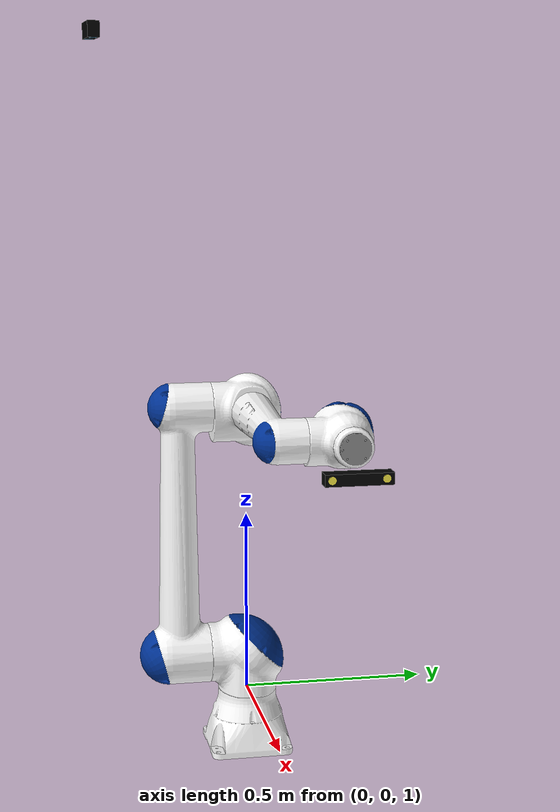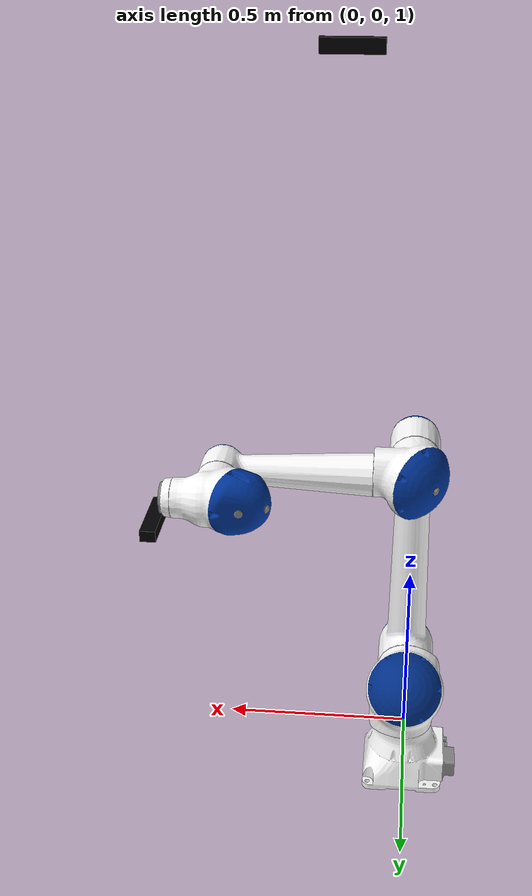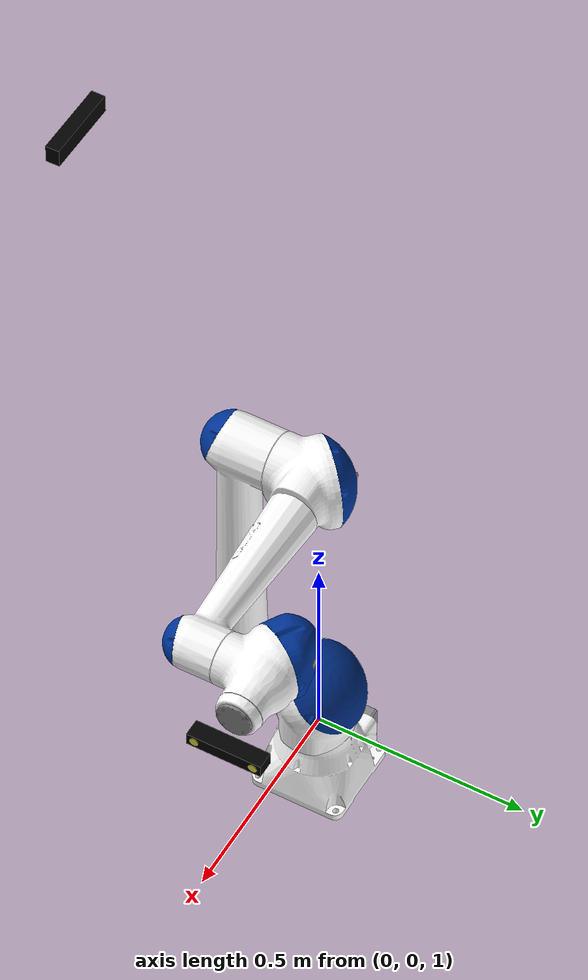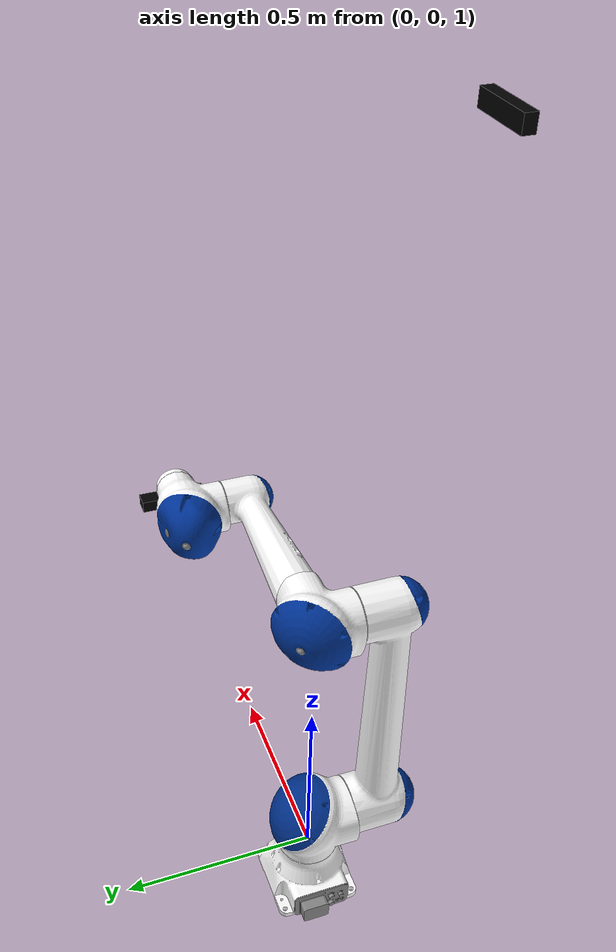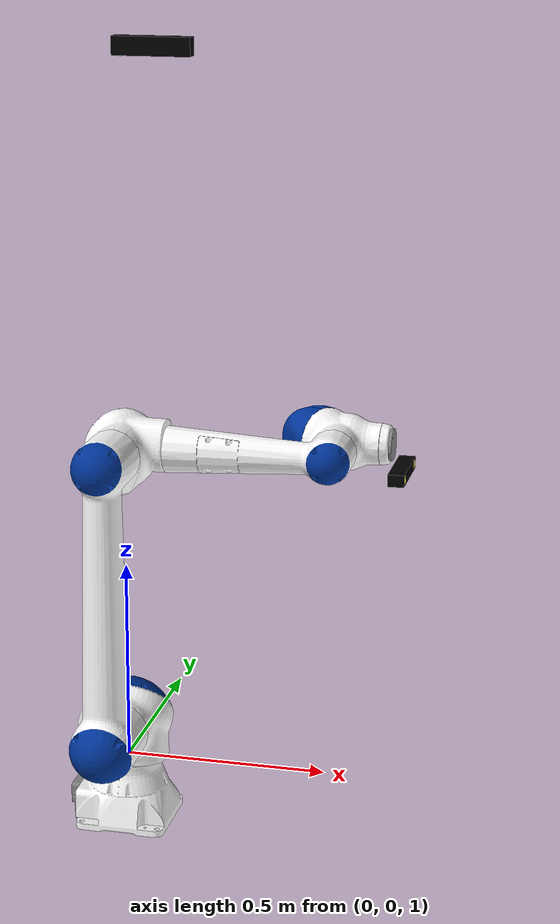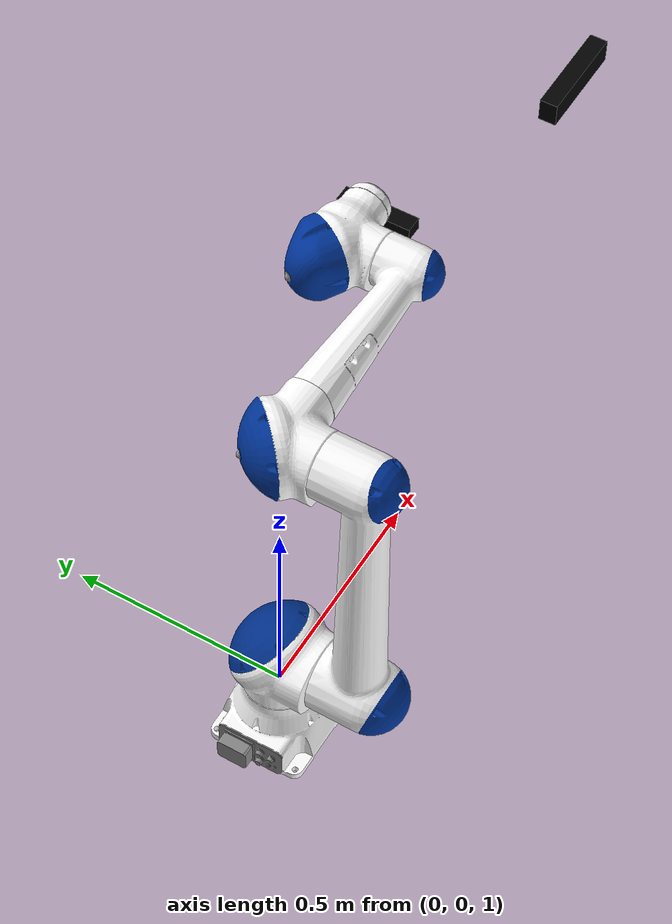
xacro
<?xml version="1.0" ?>
<robot name="depth_camera" xmlns:xacro="http://ros.org/wiki/xacro">

  <!-- Include -->
  <xacro:include filename="$(find yaskawa_hc10)/urdf/hc10_macro.xacro" />
  <xacro:include filename="$(find depth_camera)/urdf/depth_camera_macro.xacro" />

  <link name="world"/>

  <!-- Variables -->
  <xacro:depth_camera prefix="top_"/>
  <joint name="camera_fixed" type="fixed">
    <parent link="world"/>
    <child link="top_depth_camera_link"/>
    <origin xyz="0.2 -0.42 2.8 " rpy="3.1415 1.5707 1.5708" />
  </joint>

  <!-- Joint controller -->
  <gazebo>
		<plugin name="gazebo_ros_control" filename="libgazebo_ros_control.so"/>
  </gazebo>

  <!-- Used for fixing robot to Gazebo 'base_link' -->
  <xacro:motoman_hc10 prefix=""/>

  <joint name="fixed" type="fixed">
    <parent link="world"/>
    <child link="base_link"/>
    <origin xyz="0 0 0.83 " rpy="0 0 0" />
  </joint>

  <xacro:depth_camera prefix="robot_"/>
  <joint name="robot_camera_fixed" type="fixed">
    <parent link="link_6_t"/>
    <child link="robot_depth_camera_link"/>
    <origin xyz="-0.065 0 -0.15" rpy="0 1.5708 0" />
  </joint>

</robot>

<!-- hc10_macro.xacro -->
<robot xmlns:xacro="http://ros.org/wiki/xacro">
  <xacro:macro name="motoman_hc10" params="prefix">
    <xacro:include filename="$(find yaskawa_hc10)/urdf/common_materials.xacro"/>
    <xacro:include filename="$(find yaskawa_hc10)/urdf/hc10.gazebo" />

    <!-- link list -->
    <link name="${prefix}base_link">
      <visual>
        <geometry>
          <mesh filename="package://motoman_hc10_support/meshes/hc10/visual/base_link.dae"/>
        </geometry>
        <xacro:material_yaskawa_blue/>
      </visual>
      <collision>
        <geometry>
          <mesh filename="package://motoman_hc10_support/meshes/hc10/collision/base_link.stl"/>
        </geometry>
      </collision>
      <inertial>
        <mass value="8" />
        <origin xyz="0 0 0" rpy="0 0 0"/>
        <inertia
        ixx="1.0" ixy="0.0" ixz="0.0"
        iyy="1.0" iyz="0.0"
        izz="1.0"/>
      </inertial>
    </link>
    <link name="${prefix}link_1_s">
      <visual>
        <geometry>
          <mesh filename="package://motoman_hc10_support/meshes/hc10/visual/link_1_s.dae"/>
        </geometry>
        <xacro:material_yaskawa_blue/>
      </visual>
      <collision>
        <geometry>
          <mesh filename="package://motoman_hc10_support/meshes/hc10/collision/link_1_s.stl"/>
        </geometry>
      </collision>
      <inertial>
        <mass value="14" />
        <origin xyz="0 0 0" rpy="0 0 0"/>
        <inertia
        ixx="1.0" ixy="0.0" ixz="0.0"
        iyy="1.0" iyz="0.0"
        izz="1.0"/>
      </inertial>
    </link>
    <link name="${prefix}link_2_l">
      <visual>
        <geometry>
          <mesh filename="package://motoman_hc10_support/meshes/hc10/visual/link_2_l.dae"/>
        </geometry>
        <xacro:material_yaskawa_blue/>
      </visual>
      <collision>
        <geometry>
          <mesh filename="package://motoman_hc10_support/meshes/hc10/collision/link_2_l.stl"/>
        </geometry>
      </collision>
      <inertial>
        <mass value="15" />
        <origin xyz="0 0 0" rpy="0 0 0"/>
        <inertia
        ixx="1.0" ixy="0.0" ixz="0.0"
        iyy="1.0" iyz="0.0"
        izz="1.0"/>
      </inertial>
    </link>
    <link name="${prefix}link_3_u">
      <visual>
        <geometry>
          <mesh filename="package://motoman_hc10_support/meshes/hc10/visual/link_3_u.dae"/>
        </geometry>
        <xacro:material_yaskawa_blue/>
      </visual>
      <collision>
        <geometry>
          <mesh filename="package://motoman_hc10_support/meshes/hc10/collision/link_3_u.stl"/>
        </geometry>
      </collision>
      <inertial>
        <mass value="8" />
        <origin xyz="0 0 0" rpy="0 0 0"/>
        <inertia
        ixx="1.0" ixy="0.0" ixz="0.0"
        iyy="1.0" iyz="0.0"
        izz="1.0"/>
      </inertial>
    </link>
    <link name="${prefix}link_4_r">
      <visual>
        <geometry>
          <mesh filename="package://motoman_hc10_support/meshes/hc10/visual/link_4_r.dae"/>
        </geometry>
        <xacro:material_yaskawa_blue/>
      </visual>
      <collision>
        <geometry>
          <mesh filename="package://motoman_hc10_support/meshes/hc10/collision/link_4_r.stl"/>
        </geometry>
      </collision>
      <inertial>
        <mass value="5" />
        <origin xyz="0 0 0" rpy="0 0 0"/>
        <inertia
        ixx="1.0" ixy="0.0" ixz="0.0"
        iyy="1.0" iyz="0.0"
        izz="1.0"/>
      </inertial>
    </link>
    <link name="${prefix}link_5_b">
      <visual>
        <geometry>
          <mesh filename="package://motoman_hc10_support/meshes/hc10/visual/link_5_b.dae"/>
        </geometry>
        <xacro:material_yaskawa_blue/>
      </visual>
      <collision>
        <geometry>
          <mesh filename="package://motoman_hc10_support/meshes/hc10/collision/link_5_b.stl"/>
        </geometry>
      </collision>
      <inertial>
        <mass value="6" />
        <origin xyz="0 0 0" rpy="0 0 0"/>
        <inertia
        ixx="1.0" ixy="0.0" ixz="0.0"
        iyy="1.0" iyz="0.0"
        izz="1.0"/>
      </inertial>
    </link>
    <link name="${prefix}link_6_t">
      <visual>
        <geometry>
          <mesh filename="package://motoman_hc10_support/meshes/hc10dt/visual/link_6_t.dae"/>
        </geometry>
        <xacro:material_yaskawa_blue/>
      </visual>
      <collision>
        <geometry>
          <mesh filename="package://motoman_hc10_support/meshes/hc10dt/collision/link_6_t.stl"/>
       </geometry>
      </collision>
      <inertial>
        <mass value="2" />
        <origin xyz="0 0 0" rpy="0 0 0"/>
        <inertia
        ixx="1.0" ixy="0.0" ixz="0.0"
        iyy="1.0" iyz="0.0"
        izz="1.0"/>
      </inertial>
    </link>
    <!-- end of link list -->

    <xacro:property name="joint_d" value="1" />
    <xacro:property name="joint_eff" value="10000000" />
    <xacro:property name="joint_vel" value="20" />
    <xacro:property name="joint_f" value="100" />

    <!-- joint list -->
    <joint name="${prefix}joint_1_s" type="revolute">
      <parent link="${prefix}base_link"/>
      <child link="${prefix}link_1_s"/>
      <origin xyz="0 0 0.275" rpy="0 0 0" />
      <axis xyz="0 0 1" />
      <limit lower="${radians(-180)}" upper="${radians(180)}" effort="${joint_eff}" velocity="${radians(130)}"/>
      <dynamics damping="0" friction="0" />
    </joint>
    <joint name="${prefix}joint_2_l" type="revolute">
      <parent link="${prefix}link_1_s"/>
      <child link="${prefix}link_2_l"/>
      <origin xyz="0 0 0" rpy="0 0 0" />
      <axis xyz="0 1 0" />
      <limit lower="${radians(-180)}" upper="${radians(180)}" effort="${joint_eff}" velocity="${radians(130)}"/>
      <dynamics damping="${joint_d}" friction="${joint_f}" />
    </joint>
    <joint name="${prefix}joint_3_u" type="revolute">
      <parent link="${prefix}link_2_l"/>
      <child link="${prefix}link_3_u"/>
      <origin xyz="0 0 0.700" rpy="0 ${radians(-90)} 0" />
      <axis xyz="0 -1 0" />
      <limit lower="${radians(-180)}" upper="${radians(180)}" effort="${joint_eff}" velocity="${radians(180)}"/>
      <dynamics damping="${joint_d}" friction="${joint_f}" />
    </joint>
    <joint name="${prefix}joint_4_r" type="revolute">
      <parent link="${prefix}link_3_u"/>
      <child link="${prefix}link_4_r"/>
      <origin xyz="0 0 -0.500" rpy="0 0 0" />
      <axis xyz="0 0 1" />
      <limit lower="${radians(-180)}" upper="${radians(180)}" effort="${joint_eff}" velocity="${radians(180)}"/>
      <dynamics damping="${joint_d}" friction="${joint_f}" />
    </joint>
    <joint name="${prefix}joint_5_b" type="revolute">
      <parent link="${prefix}link_4_r"/>
      <child link="${prefix}link_5_b"/>
      <origin xyz="0 0.162 0" rpy="0 0 0" />
      <axis xyz="0 -1 0" />
      <limit lower="${radians(-180)}" upper="${radians(180)}" effort="${joint_eff}" velocity="${radians(250)}"/>
      <dynamics damping="${joint_d}" friction="${joint_f}" />
    </joint>
    <joint name="${prefix}joint_6_t" type="revolute">
      <parent link="${prefix}link_5_b"/>
      <child link="${prefix}link_6_t"/>
      <origin xyz="0 0 0" rpy="0 0 0" />
      <axis xyz="0 0 1" />
      <limit lower="${radians(-180)}" upper="${radians(180)}" effort="${joint_eff}" velocity="${radians(250)}"/>
      <dynamics damping="${joint_d}" friction="${joint_f}" />
    </joint>
    <!-- end of joint list -->

    <!-- joint controller list -->
    <xacro:simple_transmission name="${prefix}joint_1_s" interface="hardware_interface/EffortJointInterface" />
    <xacro:simple_transmission name="${prefix}joint_2_l" interface="hardware_interface/EffortJointInterface" />
    <xacro:simple_transmission name="${prefix}joint_3_u" interface="hardware_interface/EffortJointInterface" />
    <xacro:simple_transmission name="${prefix}joint_4_r" interface="hardware_interface/EffortJointInterface" />
    <xacro:simple_transmission name="${prefix}joint_5_b" interface="hardware_interface/EffortJointInterface" />
    <xacro:simple_transmission name="${prefix}joint_6_t" interface="hardware_interface/EffortJointInterface" />
    <!-- end of joint controller list -->

    <!-- ROS base_link to Robot Manufacturer World Coordinates transform -->
    <link name="${prefix}base" />
    <joint name="${prefix}base_link-base" type="fixed">
      <origin xyz="0 0 0.275" rpy="0 0 0"/>
      <parent link="${prefix}base_link"/>
      <child link="${prefix}base"/>
    </joint>

    <gazebo reference="${prefix}base_link">
      <gravity>0</gravity>
    </gazebo>
    <gazebo reference="${prefix}link_1_s">
      <gravity>0</gravity>
    </gazebo>
    <gazebo reference="${prefix}link_2_l">
      <gravity>0</gravity>
    </gazebo>
    <gazebo reference="{prefix}link_3_u">
      <gravity>0</gravity>
    </gazebo>
    <gazebo reference="{prefix}link_4_r">
      <gravity>0</gravity>
    </gazebo>
    <gazebo reference="${prefix}link_5_b">
      <gravity>0</gravity>
    </gazebo>
    <gazebo reference="${prefix}link_6_t">
      <gravity>0</gravity>
    </gazebo>

  </xacro:macro>
</robot>

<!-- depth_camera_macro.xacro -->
<robot xmlns:xacro="http://ros.org/wiki/xacro">
  <xacro:macro name="depth_camera" params="prefix">

    <!-- Camera Link -->
    <link name="${prefix}depth_camera_link">
      <visual>
        <geometry>
          <mesh filename="package://depth_camera/meshes/depth_camera.dae"/>
        </geometry>
      </visual>
      <collision>
        <geometry>
          <mesh filename="package://depth_camera/meshes/depth_camera.dae"/>
        </geometry>
      </collision>
      <inertial>
        <mass value="1" />
        <origin xyz="0 0 0" rpy="0 0 0"/>
        <inertia
        ixx="1.0" ixy="0.0" ixz="0.0"
        iyy="1.0" iyz="0.0"
        izz="1.0"/>
      </inertial>
    </link>

    <link name="${prefix}depth_camera_link_optical"/>

    <joint name="${prefix}depth_optical_joint" type="fixed">
      <!-- these values have to be these values otherwise the gazebo camera
          image won't be aligned properly with the frame it is supposedly
          originating from -->
      <origin xyz="0 0 0" rpy="-1.5708 0 -1.5708"/>
      <parent link="${prefix}depth_camera_link"/>
      <child link="${prefix}depth_camera_link_optical"/>
    </joint>

    <!-- Camera plugin-->
    <gazebo reference="${prefix}depth_camera_link">
      <sensor name="${prefix}depth_camera" type="depth">
        <update_rate>20</update_rate>
        <camera>
          <horizontal_fov>1</horizontal_fov>
          <vertical_fov>1</vertical_fov>
          <image>
            <width>1280</width>
            <height>1280</height>
            <format>R8G8B8</format>
          </image>
          <clip>
            <near>0.08</near>
            <far>3</far>
          </clip>
        </camera>
        <plugin name="${prefix}depth_camera_controller" filename="libgazebo_ros_openni_kinect.so">
          <baseline>0.2</baseline>
          <alwaysOn>true</alwaysOn>
          <updateRate>10</updateRate>
          <cameraName>${prefix}depth_camera</cameraName>
          <imageTopicName>/${prefix}depth_camera/color/image_raw</imageTopicName>
          <cameraInfoTopicName>/${prefix}depth_camera/color/camera_info</cameraInfoTopicName>
          <depthImageTopicName>/${prefix}depth_camera/depth/image_raw</depthImageTopicName>
          <depthImageInfoTopicName>/${prefix}depth_camera/depth/camera_info</depthImageInfoTopicName>
          <pointCloudTopicName>/${prefix}depth_camera/depth/points</pointCloudTopicName>
          <frameName>${prefix}depth_camera_link_optical</frameName>
          <pointCloudCutoff>0.0.8</pointCloudCutoff>
          <pointCloudCutoffMax>3.0</pointCloudCutoffMax>
          <distortionK1>0.0000000</distortionK1>
          <distortionK2>0.0000000</distortionK2>
          <distortionK3>0.0000000</distortionK3>
          <distortionT1>0.0000000</distortionT1>
          <distortionT2>0.0000000</distortionT2>
          <CxPrime>0</CxPrime>
          <Cx>0</Cx>
          <Cy>0</Cy>
          <focalLength>0</focalLength>
          <hackBaseline>0</hackBaseline>
        </plugin>
      </sensor>
    </gazebo>

  </xacro:macro>
</robot>
